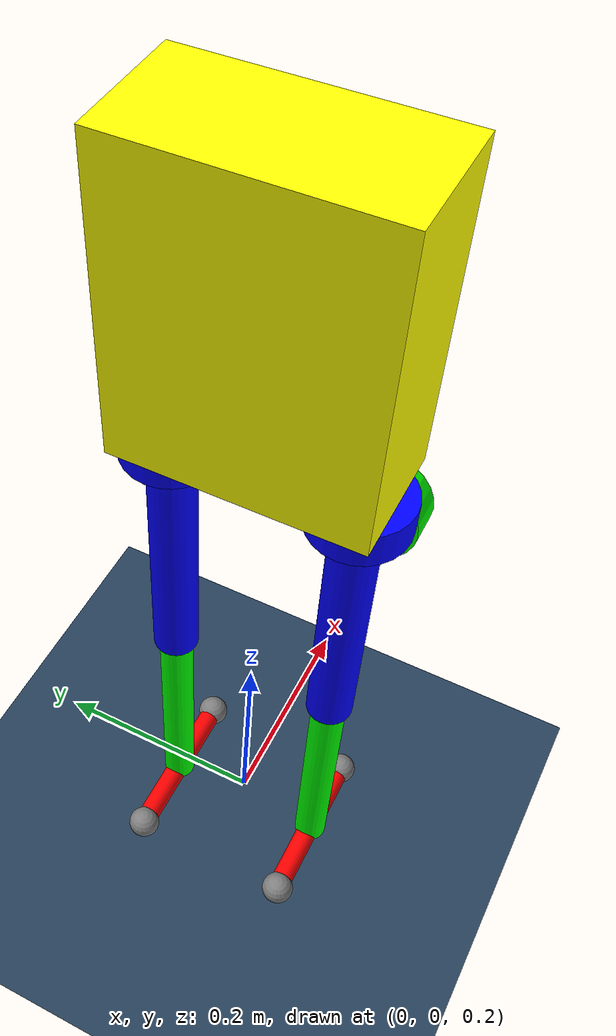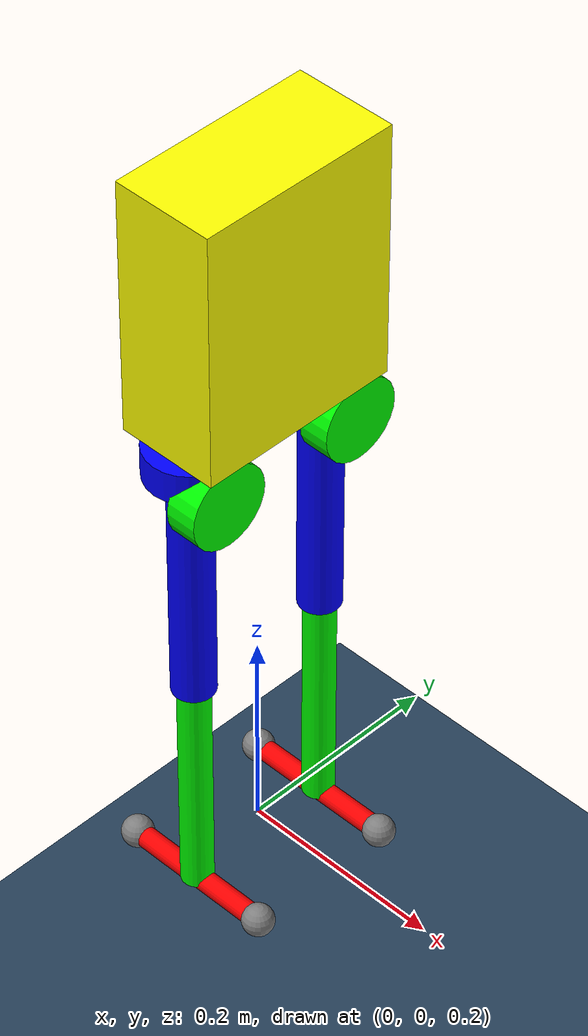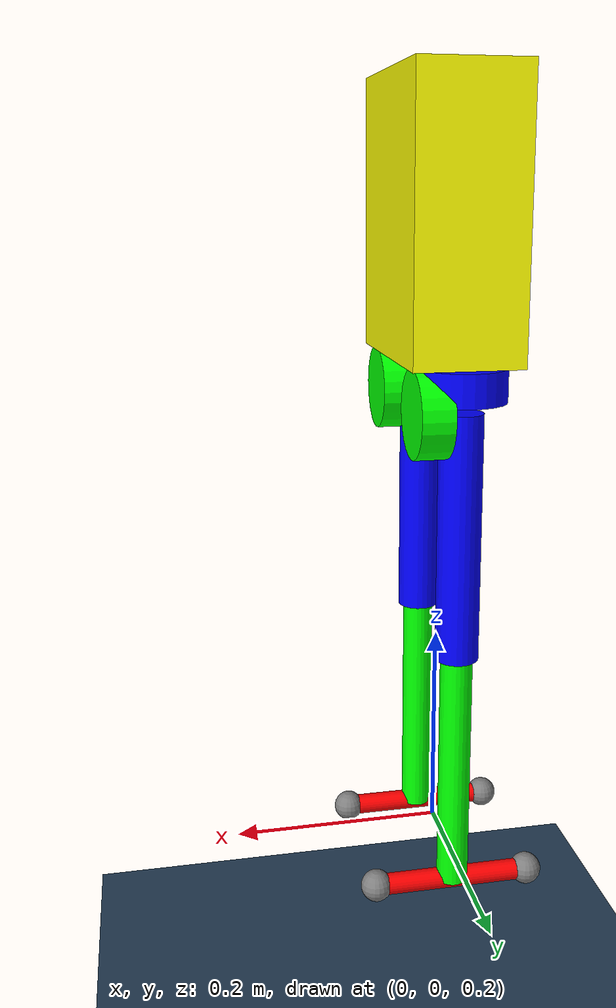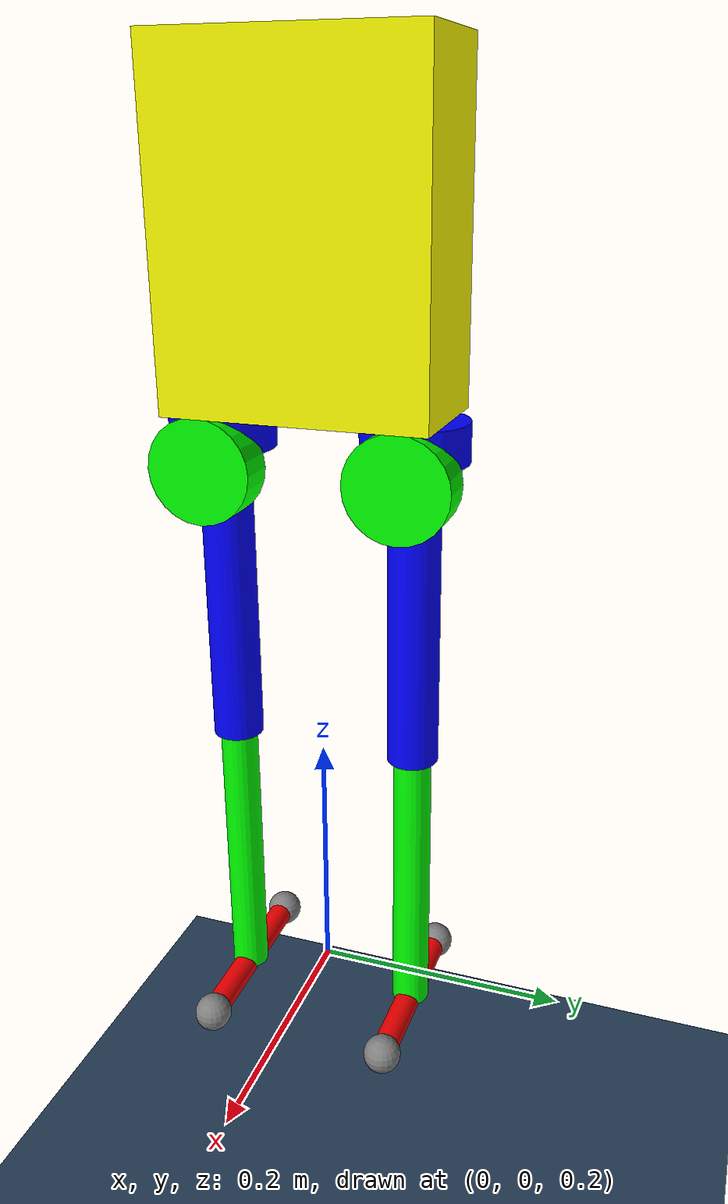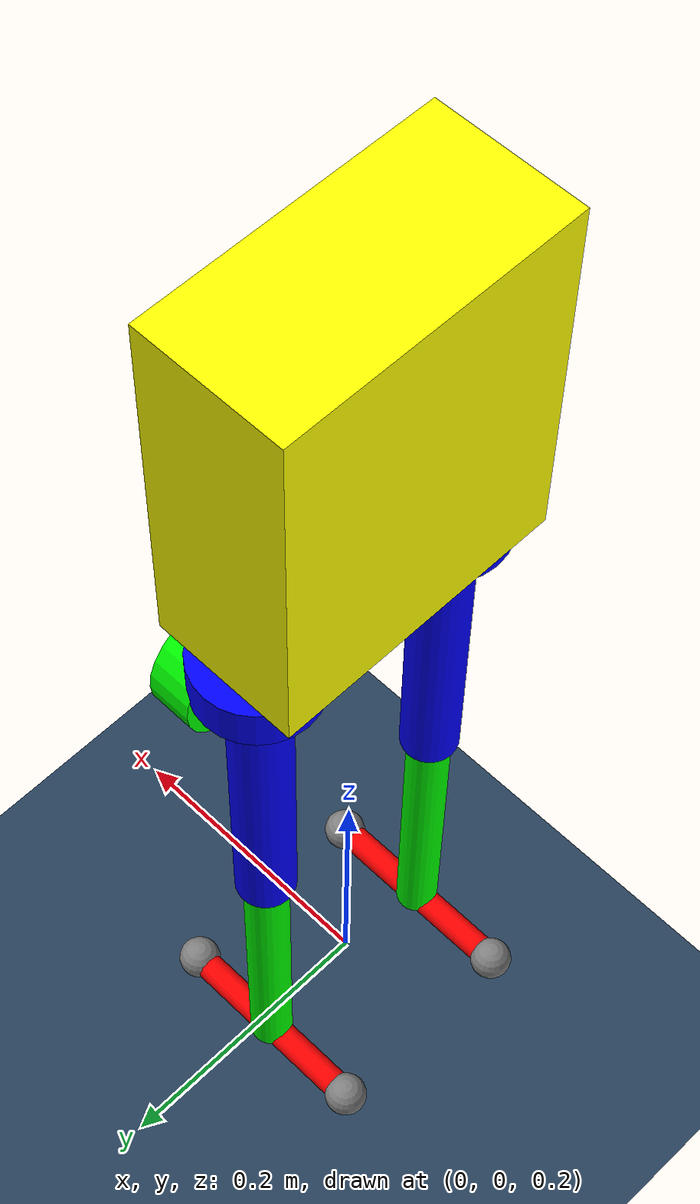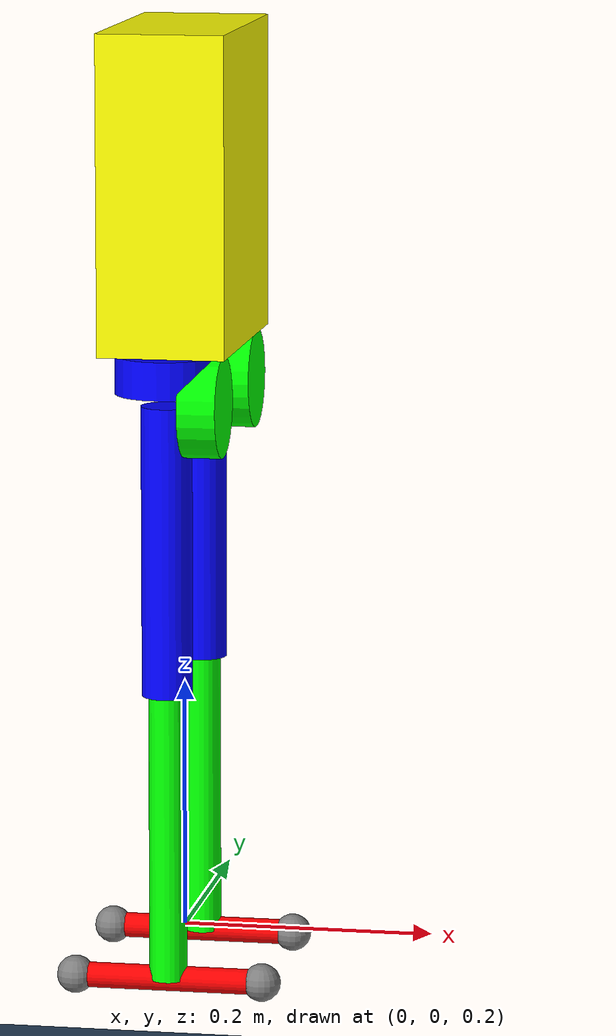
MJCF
<mujoco model="biped_linefoot_scene">
  <include file="biped_linefoot_model.xml"/>

  <statistic center="0 0 0.1" extent="0.8"/>

  <visual>
    <headlight diffuse="0.6 0.6 0.6" ambient="0.3 0.3 0.3" specular="0 0 0"/>
    <rgba haze="0.15 0.25 0.35 1"/>
    <global azimuth="-130" elevation="-20"/>
  </visual>

  <asset>
    <texture type="skybox" builtin="gradient" rgb1="0.3 0.5 0.7" rgb2="0 0 0" width="512" height="3072"/>
    <texture type="2d" name="groundplane" builtin="checker" mark="edge" rgb1="0.2 0.3 0.4" rgb2="0.1 0.2 0.3"
      markrgb="0.8 0.8 0.8" width="300" height="300"/>
    <material name="groundplane" texture="groundplane" texuniform="true" texrepeat="5 5" reflectance="0.2"/>
  </asset>

  <worldbody>
    <light pos="0 0 1.5" dir="0 0 -1" directional="true"/>
    <geom name="floor" size="0 0 0.05" type="plane" material="groundplane"/>

  </worldbody>

</mujoco>

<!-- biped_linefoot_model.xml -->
<mujoco model="biped">

  <!-- Options -->
  <compiler angle="radian" meshdir="meshes" autolimits="true" />
  <option cone="elliptic" impratio="100" gravity="0 0 -9.8" />

  <!-- Default parameters -->
   <default>
    <default class="biped">
      <geom friction="1.0" margin="0.001" condim="1"/>
      <joint axis="0 1 0" damping="0.1" armature="0.01" frictionloss="0.2"/>
      <motor ctrlrange="-50 50"/>
      <default class="hip">
        <joint range="-1.5708 1.5708"/>
      </default>
      <default class="knee">
        <joint range="-3.1415 0"/>
      </default>
      <default class="ankle">
        <joint range="-1.5708 1.5708"/>
      </default>
      <default class="visual">
        <geom contype="0" conaffinity="0" group="2"/>
      </default>
      <default class="collision">
        <geom group="2"/>
      </default>
    </default>
  </default>

  <!-- Keyframes -->
  <keyframe>
    <key name="0" qpos="0 0 0.8 0 0 0 1 0 0 0.9 -1.8 0.9 0 0 0.9 -1.8 0.9" />
  </keyframe>

  <!-- World body -->
  <worldbody>

    <!-- Torso (floating base with 6 DOF) -->
    <body name="base" pos="0 0 0.8">
      <freejoint/>
      <site name="imu" pos="0 0 0" />

      <body name="torso" pos="0 0 0" childclass="biped">
        <geom name="torso_geom" type="box" size="0.05 0.1 0.125" rgba="1 1 0 1" class="visual" />
        <inertial pos="0 0 0" mass="10" diaginertia="0.1 0.08 0.05" />

      <!-- Right Leg -->
      <body name="right_hip_rz" pos="0 -0.075 -0.125">
        <joint class="hip" name="right_hip_rz" type="hinge" axis="0 0 1" />
        <geom name="right_hip_rz_geom" type="cylinder" size="0.04 0.015" pos="0 0 -0.015" rgba="0 0 1 1" class="visual" />

        <body name="right_hip_rx" pos="0 0 -0.04">
          <joint class="hip" name="right_hip_rx" type="hinge" axis="1 0 0" />
          <geom name="right_hip_rx_geom" type="cylinder" size="0.04 0.015" pos="0.03 0 0" euler="0 1.57 0" rgba="0 1 0 1" class="visual" />

          <body name="right_thigh" pos="0 0 0">
            <joint class="hip" name="right_hip_ry" type="hinge" axis="0 1 0" />
            <geom name="right_thigh_geom" type="cylinder" size="0.02 0.23" rgba="0 0 1 1" fromto="0 0 0 0 0 -0.23" class="visual" />

            <body name="right_knee" pos="0 0 -0.23">
              <joint class="knee" name="right_knee_ry" type="hinge" axis="0 1 0" />
              <geom name="right_shin_geom" type="cylinder" size="0.015 0.23" rgba="0 1 0 1" fromto="0 0 0 0 0 -0.23" class="visual" />

              <body name="right_ankle" pos="0 0 -0.23">
                <joint class="ankle" name="right_ankle_ry" type="hinge" axis="0 1 0" />
                <geom name="right_foot_geom" type="cylinder" size="0.01 0.15" rgba="1 0 0 1" fromto="-0.075 0 0 0.075 0 0" class="collision" />

                <site name="right_foot_toe" pos="0.075 0 0" size="0.015"/>
                <site name="right_foot_heel" pos="-0.075 0 0" size="0.015"/>
              </body>
            </body>
          </body>
        </body>
      </body>

      <!-- Left Leg -->
      <body name="left_hip_rz" pos="0 0.075 -0.125">
        <joint class="hip" name="left_hip_rz" type="hinge" axis="0 0 1" />
        <geom name="left_hip_rz_geom" type="cylinder" size="0.04 0.015" pos="0 0 -0.015" rgba="0 0 1 1" class="visual" />

        <body name="left_hip_rx" pos="0 0 -0.04">
          <joint class="hip" name="left_hip_rx" type="hinge" axis="1 0 0" />
          <geom name="left_hip_rx_geom" type="cylinder" size="0.04 0.015" pos="0.03 0 0" euler="0 1.57 0" rgba="0 1 0 1" class="visual" />

          <body name="left_thigh" pos="0 0 0">
            <joint class="hip" name="left_hip_ry" type="hinge" axis="0 1 0" />
            <geom name="left_thigh_geom" type="cylinder" size="0.02 0.23" rgba="0 0 1 1" fromto="0 0 0 0 0 -0.23" class="visual" />

            <body name="left_knee" pos="0 0 -0.23">
              <joint class="knee" name="left_knee_ry" type="hinge" axis="0 1 0" />
              <geom name="left_shin_geom" type="cylinder" size="0.015 0.23" rgba="0 1 0 1" fromto="0 0 0 0 0 -0.23" class="visual" />

              <body name="left_ankle" pos="0 0 -0.23">
                <joint class="ankle" name="left_ankle_ry" type="hinge" axis="0 1 0" />
                <geom name="left_foot_geom" type="cylinder" size="0.01 0.15" rgba="1 0 0 1" fromto="-0.075 0 0 0.075 0 0" class="collision" />

                <site name="left_foot_toe" pos="0.075 0 0" size="0.015"/>
                <site name="left_foot_heel" pos="-0.075 0 0" size="0.015"/>
              </body>
            </body>
          </body>
        </body>
      </body>

      </body>
    </body>
  </worldbody>

  <!-- Actuators -->
  <actuator>
    <motor name="right_hip_rz" joint="right_hip_rz" class="hip" />
    <motor name="right_hip_rx" joint="right_hip_rx" class="hip" />
    <motor name="right_hip_ry" joint="right_hip_ry" class="hip" />
    <motor name="right_knee_ry" joint="right_knee_ry" class="knee" />
    <motor name="right_ankle_ry" joint="right_ankle_ry" class="ankle" />
    <motor name="left_hip_rz" joint="left_hip_rz" class="hip" />
    <motor name="left_hip_rx" joint="left_hip_rx" class="hip" />
    <motor name="left_hip_ry" joint="left_hip_ry" class="hip" />
    <motor name="left_knee_ry" joint="left_knee_ry" class="knee" />
    <motor name="left_ankle_ry" joint="left_ankle_ry" class="ankle" />
  </actuator>

  <!-- Sensors -->
  <sensor>
    <jointpos name="right_hip_rz_pos" joint="right_hip_rz" />
    <jointpos name="right_hip_rx_pos" joint="right_hip_rx" />
    <jointpos name="right_hip_ry_pos" joint="right_hip_ry" />
    <jointpos name="right_knee_ry_pos" joint="right_knee_ry" />
    <jointpos name="right_ankle_ry_pos" joint="right_ankle_ry" />
    <jointpos name="left_hip_rz_pos" joint="left_hip_rz" />
    <jointpos name="left_hip_rx_pos" joint="left_hip_rx" />
    <jointpos name="left_hip_ry_pos" joint="left_hip_ry" />
    <jointpos name="left_knee_ry_pos" joint="left_knee_ry" />
    <jointpos name="left_ankle_ry_pos" joint="left_ankle_ry" />

    <jointvel name="right_hip_rz_vel" joint="right_hip_rz" />
    <jointvel name="right_hip_rx_vel" joint="right_hip_rx" />
    <jointvel name="right_hip_ry_vel" joint="right_hip_ry" />
    <jointvel name="right_knee_ry_vel" joint="right_knee_ry" />
    <jointvel name="right_ankle_ry_vel" joint="right_ankle_ry" />
    <jointvel name="left_hip_rz_vel" joint="left_hip_rz" />
    <jointvel name="left_hip_rx_vel" joint="left_hip_rx" />
    <jointvel name="left_hip_ry_vel" joint="left_hip_ry" />
    <jointvel name="left_knee_ry_vel" joint="left_knee_ry" />
    <jointvel name="left_ankle_ry_vel" joint="left_ankle_ry" />

    <jointactuatorfrc name="right_hip_rz_torque" joint="right_hip_rz" />
    <jointactuatorfrc name="right_hip_rx_torque" joint="right_hip_rx" />
    <jointactuatorfrc name="right_hip_ry_torque" joint="right_hip_ry" />
    <jointactuatorfrc name="right_knee_ry_torque" joint="right_knee_ry" />
    <jointactuatorfrc name="right_ankle_ry_torque" joint="right_ankle_ry" />
    <jointactuatorfrc name="left_hip_rz_torque" joint="left_hip_rz" />
    <jointactuatorfrc name="left_hip_rx_torque" joint="left_hip_rx" />
    <jointactuatorfrc name="left_hip_ry_torque" joint="left_hip_ry" />
    <jointactuatorfrc name="left_knee_ry_torque" joint="left_knee_ry" />
    <jointactuatorfrc name="left_ankle_ry_torque" joint="left_ankle_ry" />

    <framequat name="imu_quat" objtype="site" objname="imu" />
    <gyro name="imu_gyro" site="imu" />
    <accelerometer name="imu_acc" site="imu" />

    <framepos name="frame_pos" objtype="site" objname="imu" />
    <framelinvel name="frame_vel" objtype="site" objname="imu" />

  </sensor>

</mujoco>
